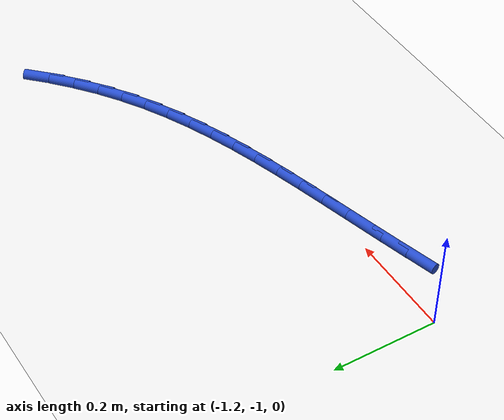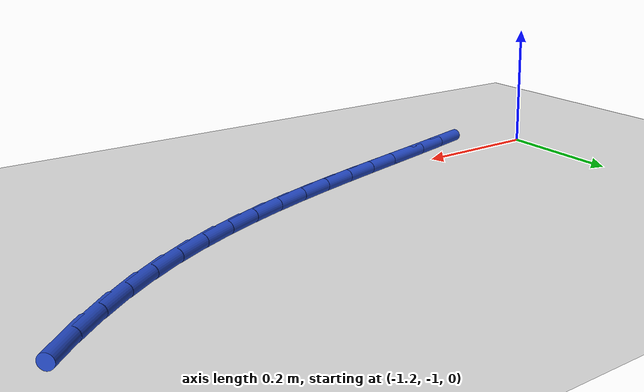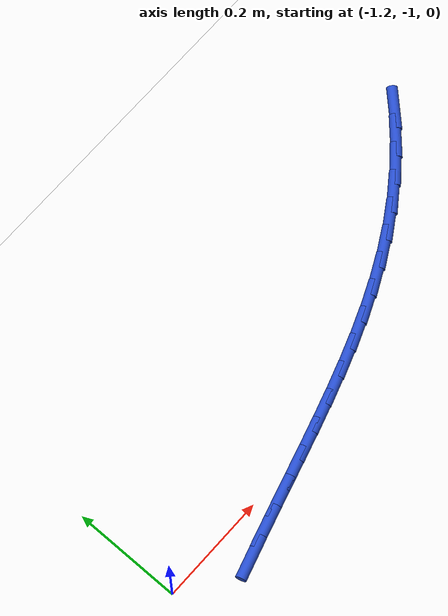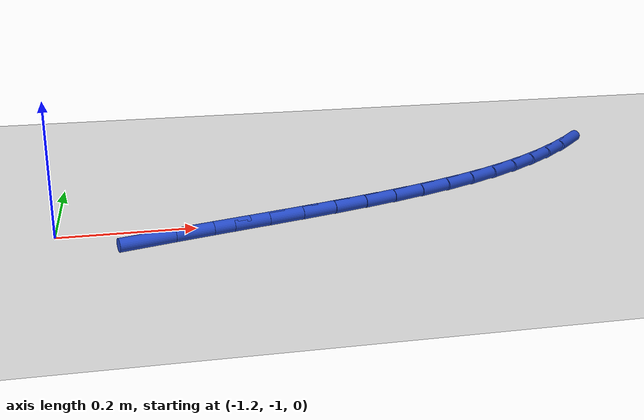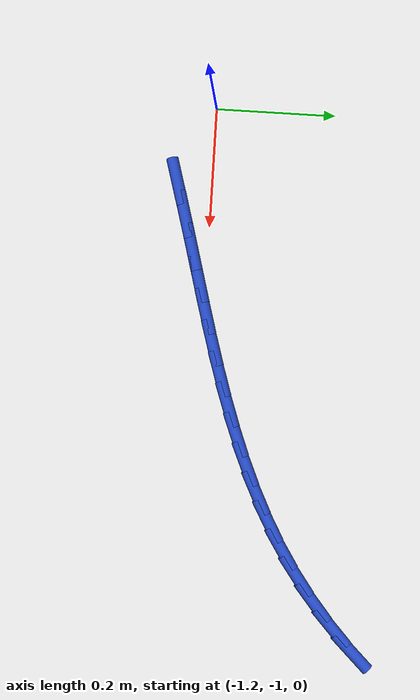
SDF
<sdf version="1.6">
 <world name="default">
  <model name="ground_plane">
   <static>1</static>
   <link name="link">
    <collision name="collision">
     <geometry><plane><normal>0 0 1</normal><size>100 100</size></plane></geometry>
     <surface><friction><ode><mu>100</mu><mu2>50</mu2></ode></friction></surface>
    </collision>
    <visual name="visual">
     <cast_shadows>0</cast_shadows>
     <geometry><plane><normal>0 0 1</normal><size>100 100</size></plane></geometry>
     <material>
      <script><uri>file://media/materials/scripts/gazebo.material</uri><name>Gazebo/WhiteGlow</name></script>
     </material>
    </visual>
   </link>
  </model>
  <model name="line">
   <link name="link_99">
    <pose>-1.0711099327987388 -1.0573076411013047 0.01 0 1.57 0.2818848629730075</pose>
    <collision name="collision">
     <geometry><cylinder><radius>0.01</radius><length>0.08</length></cylinder></geometry>
    </collision>
    <visual name="visual">
     <material>
      <script><name>Gazebo/Blue</name><uri>file://media/materials/scripts/gazebo.material</uri></script>
     </material>
     <geometry><cylinder><radius>0.01</radius><length>0.08</length></cylinder></geometry>
    </visual>
   </link>
   <link name="link_100">
    <pose>-1.016808900200513 -1.0415822709899043 0.01 0 1.57 0.27336790988097964</pose>
    <collision name="collision">
     <geometry><cylinder><radius>0.01</radius><length>0.08</length></cylinder></geometry>
    </collision>
    <visual name="visual">
     <material>
      <script><name>Gazebo/Blue</name><uri>file://media/materials/scripts/gazebo.material</uri></script>
     </material>
     <geometry><cylinder><radius>0.01</radius><length>0.08</length></cylinder></geometry>
    </visual>
   </link>
   <link name="link_101">
    <pose>-0.9630280805727859 -1.026502806396515 0.01 0 1.57 0.269249667173466</pose>
    <collision name="collision">
     <geometry><cylinder><radius>0.01</radius><length>0.08</length></cylinder></geometry>
    </collision>
    <visual name="visual">
     <material>
      <script><name>Gazebo/Blue</name><uri>file://media/materials/scripts/gazebo.material</uri></script>
     </material>
     <geometry><cylinder><radius>0.01</radius><length>0.08</length></cylinder></geometry>
    </visual>
   </link>
   <link name="link_102">
    <pose>-0.9098473308980222 -1.011827551996184 0.01 0 1.57 0.27086525912713155</pose>
    <collision name="collision">
     <geometry><cylinder><radius>0.01</radius><length>0.08</length></cylinder></geometry>
    </collision>
    <visual name="visual">
     <material>
      <script><name>Gazebo/Blue</name><uri>file://media/materials/scripts/gazebo.material</uri></script>
     </material>
     <geometry><cylinder><radius>0.01</radius><length>0.08</length></cylinder></geometry>
    </visual>
   </link>
   <link name="link_103">
    <pose>-0.8573331041241206 -0.9972448819855133 0.01 0 1.57 0.27842585546309856</pose>
    <collision name="collision">
     <geometry><cylinder><radius>0.01</radius><length>0.08</length></cylinder></geometry>
    </collision>
    <visual name="visual">
     <material>
      <script><name>Gazebo/Blue</name><uri>file://media/materials/scripts/gazebo.material</uri></script>
     </material>
     <geometry><cylinder><radius>0.01</radius><length>0.08</length></cylinder></geometry>
    </visual>
   </link>
   <link name="link_104">
    <pose>-0.8055518531989785 -0.9824431705611057 0.01 0 1.57 0.2921374521218914</pose>
    <collision name="collision">
     <geometry><cylinder><radius>0.01</radius><length>0.08</length></cylinder></geometry>
    </collision>
    <visual name="visual">
     <material>
      <script><name>Gazebo/Blue</name><uri>file://media/materials/scripts/gazebo.material</uri></script>
     </material>
     <geometry><cylinder><radius>0.01</radius><length>0.08</length></cylinder></geometry>
    </visual>
   </link>
   <link name="link_105">
    <pose>-0.7545700310704931 -0.9671107919195626 0.01 0 1.57 0.31219102356088785</pose>
    <collision name="collision">
     <geometry><cylinder><radius>0.01</radius><length>0.08</length></cylinder></geometry>
    </collision>
    <visual name="visual">
     <material>
      <script><name>Gazebo/Blue</name><uri>file://media/materials/scripts/gazebo.material</uri></script>
     </material>
     <geometry><cylinder><radius>0.01</radius><length>0.08</length></cylinder></geometry>
    </visual>
   </link>
   <link name="link_106">
    <pose>-0.7044540906865615 -0.9509361202574856 0.01 0 1.57 0.33874416241475536</pose>
    <collision name="collision">
     <geometry><cylinder><radius>0.01</radius><length>0.08</length></cylinder></geometry>
    </collision>
    <visual name="visual">
     <material>
      <script><name>Gazebo/Blue</name><uri>file://media/materials/scripts/gazebo.material</uri></script>
     </material>
     <geometry><cylinder><radius>0.01</radius><length>0.08</length></cylinder></geometry>
    </visual>
   </link>
   <link name="link_107">
    <pose>-0.6552704849950807 -0.9336075297714769 0.01 0 1.57 0.37189311051932017</pose>
    <collision name="collision">
     <geometry><cylinder><radius>0.01</radius><length>0.08</length></cylinder></geometry>
    </collision>
    <visual name="visual">
     <material>
      <script><name>Gazebo/Blue</name><uri>file://media/materials/scripts/gazebo.material</uri></script>
     </material>
     <geometry><cylinder><radius>0.01</radius><length>0.08</length></cylinder></geometry>
    </visual>
   </link>
   <link name="link_108">
    <pose>-0.6070856669439496 -0.9148133946581384 0.01 0 1.57 0.4116351394492728</pose>
    <collision name="collision">
     <geometry><cylinder><radius>0.01</radius><length>0.08</length></cylinder></geometry>
    </collision>
    <visual name="visual">
     <material>
      <script><name>Gazebo/Blue</name><uri>file://media/materials/scripts/gazebo.material</uri></script>
     </material>
     <geometry><cylinder><radius>0.01</radius><length>0.08</length></cylinder></geometry>
    </visual>
   </link>
   <link name="link_109">
    <pose>-0.5599660894810649 -0.8942420891140721 0.01 0 1.57 0.4578233166330258</pose>
    <collision name="collision">
     <geometry><cylinder><radius>0.01</radius><length>0.08</length></cylinder></geometry>
    </collision>
    <visual name="visual">
     <material>
      <script><name>Gazebo/Blue</name><uri>file://media/materials/scripts/gazebo.material</uri></script>
     </material>
     <geometry><cylinder><radius>0.01</radius><length>0.08</length></cylinder></geometry>
    </visual>
   </link>
   <link name="link_110">
    <pose>-0.5139782055543234 -0.8715819873358794 0.01 0 1.57 0.5101189269828162</pose>
    <collision name="collision">
     <geometry><cylinder><radius>0.01</radius><length>0.08</length></cylinder></geometry>
    </collision>
    <visual name="visual">
     <material>
      <script><name>Gazebo/Blue</name><uri>file://media/materials/scripts/gazebo.material</uri></script>
     </material>
     <geometry><cylinder><radius>0.01</radius><length>0.08</length></cylinder></geometry>
    </visual>
   </link>
   <link name="link_111">
    <pose>-0.4691884681116239 -0.8465214635201631 0.01 0 1.57 0.5679468443275559</pose>
    <collision name="collision">
     <geometry><cylinder><radius>0.01</radius><length>0.08</length></cylinder></geometry>
    </collision>
    <visual name="visual">
     <material>
      <script><name>Gazebo/Blue</name><uri>file://media/materials/scripts/gazebo.material</uri></script>
     </material>
     <geometry><cylinder><radius>0.01</radius><length>0.08</length></cylinder></geometry>
    </visual>
   </link>
   <link name="link_112">
    <pose>-0.42566337454044423 -0.8187491598802543 0.01 0 1.57 0.6287315143235167</pose>
    <collision name="collision">
     <geometry><cylinder><radius>0.01</radius><length>0.08</length></cylinder></geometry>
    </collision>
    <visual name="visual">
     <material>
      <script><name>Gazebo/Blue</name><uri>file://media/materials/scripts/gazebo.material</uri></script>
     </material>
     <geometry><cylinder><radius>0.01</radius><length>0.08</length></cylinder></geometry>
    </visual>
   </link>
   <link name="link_113">
    <pose>-0.3834907479729112 -0.7880823349708637 0.01 0 1.57 0.6876191649263284</pose>
    <collision name="collision">
     <geometry><cylinder><radius>0.01</radius><length>0.08</length></cylinder></geometry>
    </collision>
    <visual name="visual">
     <material>
      <script><name>Gazebo/Blue</name><uri>file://media/materials/scripts/gazebo.material</uri></script>
     </material>
     <geometry><cylinder><radius>0.01</radius><length>0.08</length></cylinder></geometry>
    </visual>
   </link>
   <link name="link_114">
    <pose>-0.34281387275456504 -0.7546727359413724 0.01 0 1.57 0.7443148491295163</pose>
    <collision name="collision">
     <geometry><cylinder><radius>0.01</radius><length>0.08</length></cylinder></geometry>
    </collision>
    <visual name="visual">
     <material>
      <script><name>Gazebo/Blue</name><uri>file://media/materials/scripts/gazebo.material</uri></script>
     </material>
     <geometry><cylinder><radius>0.01</radius><length>0.08</length></cylinder></geometry>
    </visual>
   </link>
   <link name="link_115">
    <pose>-0.30378493368946324 -0.7187257889301035 0.01 0 1.57 0.799303808062051</pose>
    <collision name="collision">
     <geometry><cylinder><radius>0.01</radius><length>0.08</length></cylinder></geometry>
    </collision>
    <visual name="visual">
     <material>
      <script><name>Gazebo/Blue</name><uri>file://media/materials/scripts/gazebo.material</uri></script>
     </material>
     <geometry><cylinder><radius>0.01</radius><length>0.08</length></cylinder></geometry>
    </visual>
   </link>
  </model>
 </world>
</sdf>
